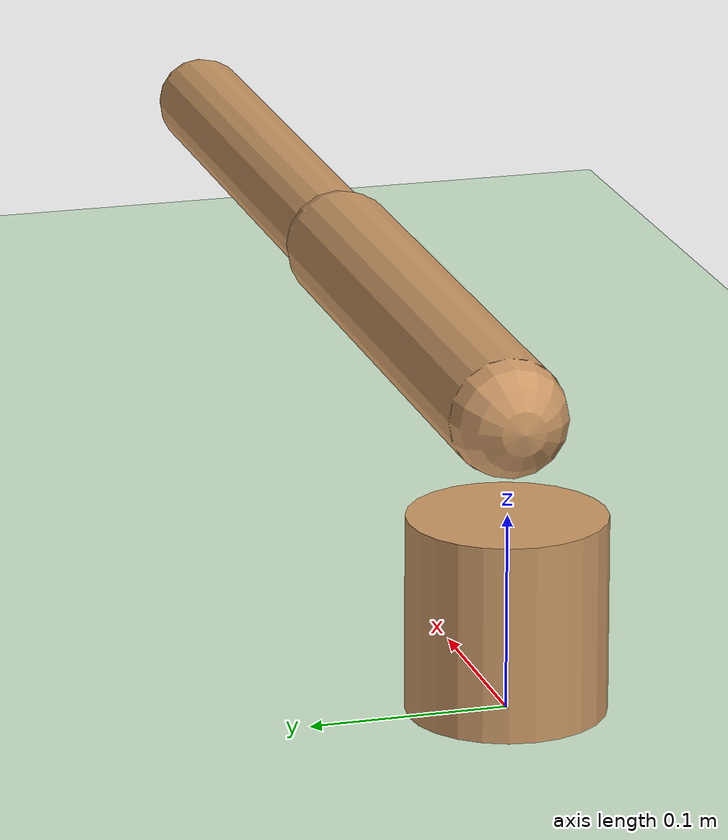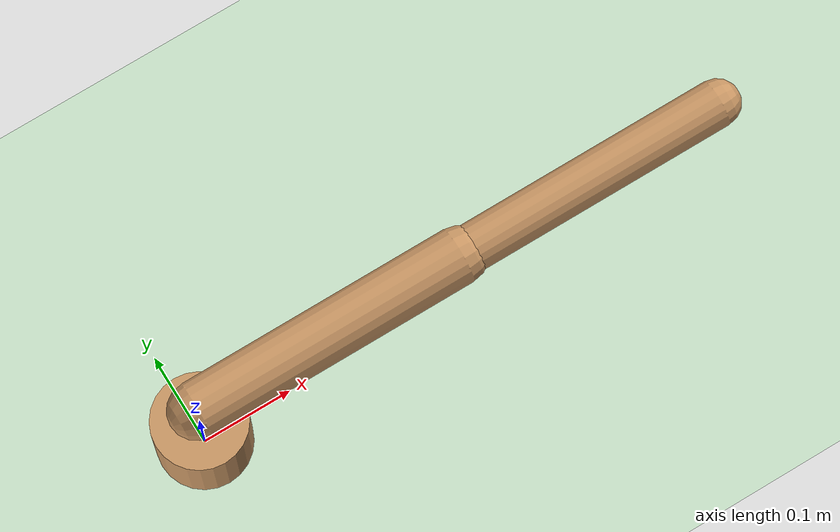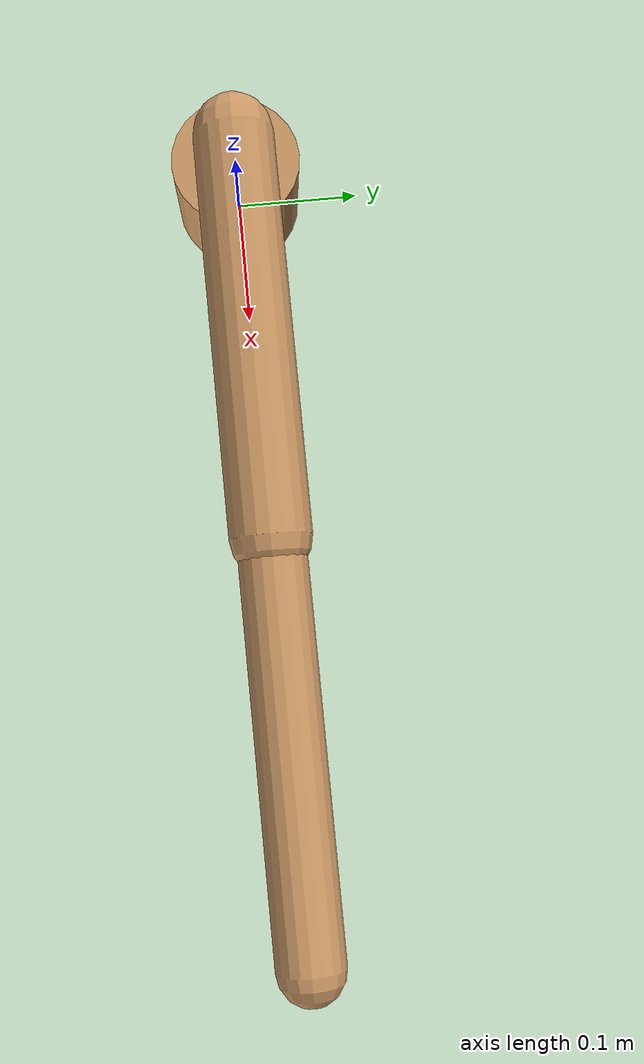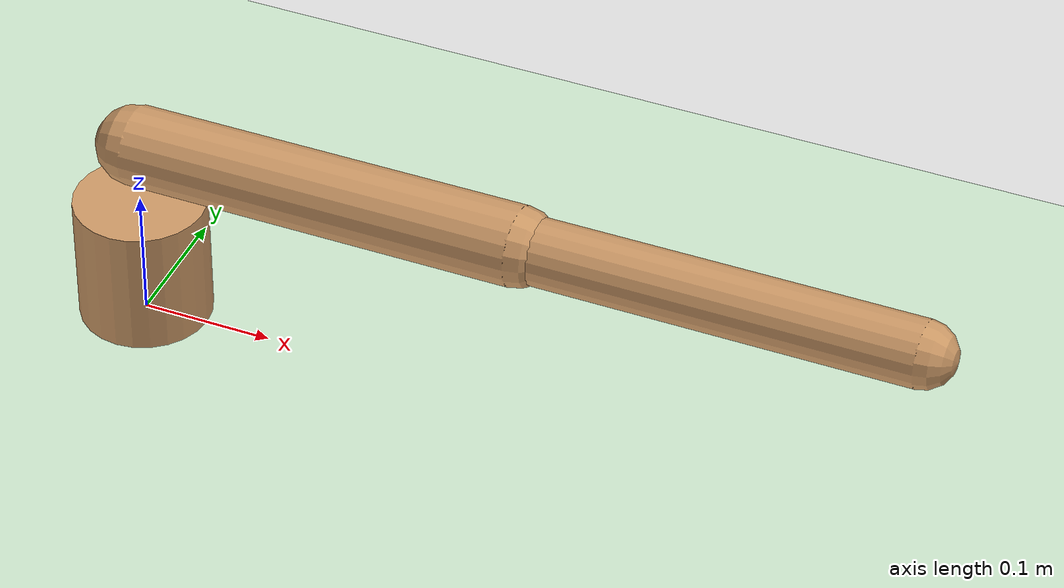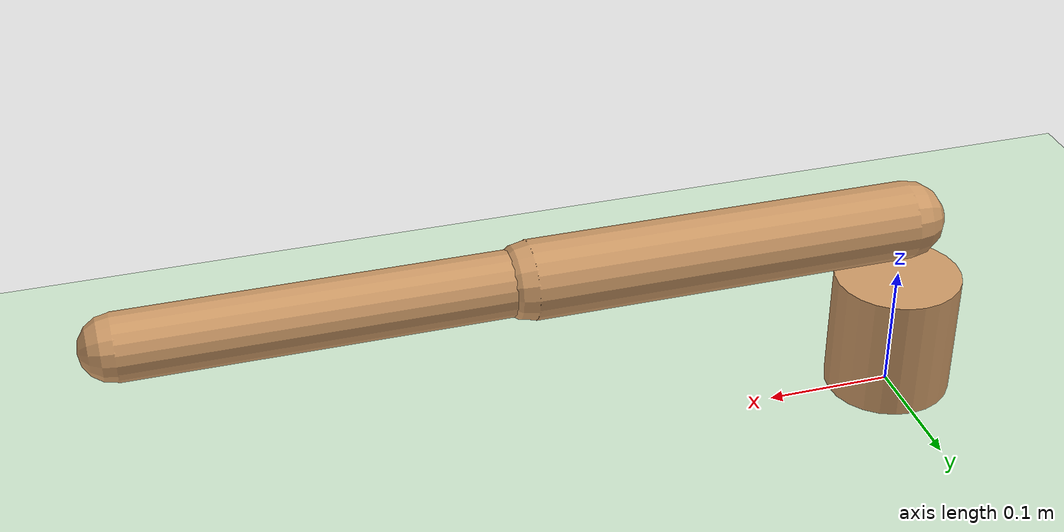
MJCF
<mujoco model="two_arm">
  <compiler angle="degree" inertiafromgeom="true"/>
  <default>
    <joint armature="1" damping="1" limited="true"/>
    <geom conaffinity="1" condim="1" contype="1" margin="0.001" material="geom" rgba="0.8 0.6 .4 1" solimp=".8 .8 .01" solref=".02 1"/>
    <motor ctrllimited="true" ctrlrange="-.4 .4"/>
  </default>
  <option integrator="RK4" timestep="0.002"/>
  <visual>
    <map znear="0.02"/>
  </visual>
  <worldbody>
    <light cutoff="100" diffuse="1 1 1" dir="-0 0 -1.3" directional="true" exponent="1" pos="0 0 1.3" specular=".1 .1 .1"/>
    <geom conaffinity="1" condim="3" name="floor" pos="0 0 0" rgba="0.8 0.9 0.8 1" size="20 20 .125" type="plane" material="MatPlane"/>
    <!-- Fixed base -->
    <body name="base" pos="0 0 0.05">
      <geom name="base_geom" type="cylinder" size="0.05 0.05" rgba="0.5 0.5 0.5 1" density="1000"/>
      <!-- First link -->
      <body name="link1" pos="0 0 0.1">
        <joint axis="0 0 1" name="joint1" pos="0 0 0" range="-180 180" type="hinge"/>
        <geom friction="0.9" name="link1_geom" type="capsule" fromto="0 0 0 0.3 0 0" size="0.03" density="300"/>
        <!-- Second link -->
        <body name="link2" pos="0.3 0 0">
          <joint axis="0 1 0" name="joint2" pos="0 0 0" range="-150 0" type="hinge"/>
          <geom friction="0.9" name="link2_geom" type="capsule" fromto="0 0 0 0.3 0 0" size="0.025" density="300"/>
          <site name="ee_frame" pos="0.3 0 0" size="0.01" rgba="0 1 0 1"/>
        </body>
      </body>
    </body>
  </worldbody>
  <actuator>
    <motor ctrllimited="true" ctrlrange="-1.0 1.0" gear="200.0" name="joint1_effort_actuator" joint="joint1"/>
    <motor ctrllimited="true" ctrlrange="-1.0 1.0" gear="200.0" name="joint2_effort_actuator" joint="joint2"/>
  </actuator>
  <asset>
    <texture type="skybox" builtin="gradient" rgb1=".4 .5 .6" rgb2="0 0 0" width="100" height="100"/>
    <texture builtin="flat" height="1278" mark="cross" markrgb="1 1 1" name="texgeom" random="0.01" rgb1="0.8 0.6 0.4" rgb2="0.8 0.6 0.4" type="cube" width="127"/>
    <texture builtin="checker" height="100" name="texplane" rgb1="0 0 0" rgb2="0.8 0.8 0.8" type="2d" width="100"/>
    <material name="MatPlane" reflectance="0.5" shininess="1" specular="1" texrepeat="60 60" texture="texplane"/>
    <material name="geom" texture="texgeom" texuniform="true"/>
  </asset>
</mujoco>
